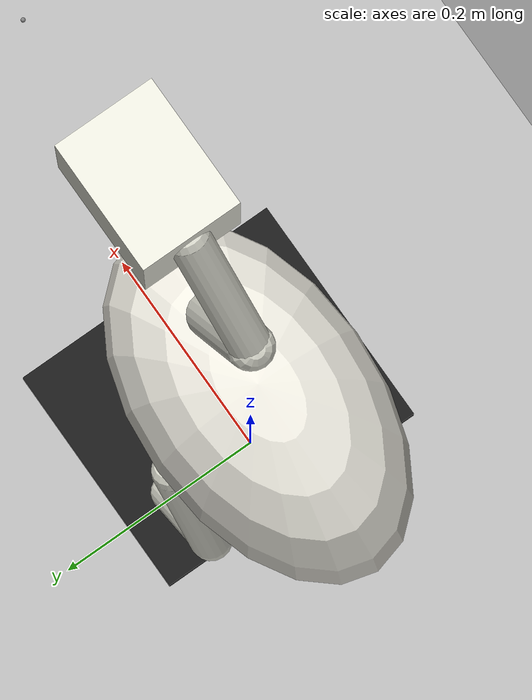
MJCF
<mujoco model="goose_r2_stance_trial">
  <compiler angle="radian" autolimits="true" />
  <option timestep=".001" gravity="0 0 -9.81" integrator="implicitfast" iterations="80" />
  <worldbody>
    <geom name="floor" type="plane" size="2 2 .1" friction=".8 .005 .0001" rgba=".7 .7 .7 1" />
    <body name="torso" pos="-0.01 0 0.35">
      <freejoint name="root" />
      <inertial pos="-0.000824350379 0.000392198411 -0.00290453638" mass="2.25346888" diaginertia="0.0213543553 0.0211706967 0.019496536" />
      <geom name="body_collision" type="ellipsoid" size="0.175 0.1025 0.115" mass="0" rgba=".91 .9 .86 1" />
      <body name="right_thigh" pos="0 -0.088 -0.064">
        <joint name="right_hip_yaw" axis="0 0 1" range="-0.7 0.7" damping=".03" armature=".00005" />
        <joint name="right_hip_roll" axis="1 0 0" range="-0.7 0.7" damping=".03" armature=".00005" />
        <joint name="right_hip_pitch" axis="0 1 0" range="-1.5 1.5" damping=".03" armature=".00005" />
        <inertial pos="-0.0449138206 1.90764775e-08 -0.0976001878" mass="0.158629984" diaginertia="0.000322669781 0.000384469484 0.000101589333" />
        <geom name="right_thigh_link" type="capsule" fromto="0 0 0 -0.055 0 -0.129" size=".019" mass="0" contype="0" conaffinity="0" rgba=".9 .9 .85 1" />
        <body name="right_shin" pos="-0.055 0 -0.129">
          <joint name="right_knee_pitch" axis="0 1 0" range="-1.8 1.8" damping=".03" armature=".00005" />
          <inertial pos="0.0479484101 2.03502183e-08 -0.0827541797" mass="0.146063427" diaginertia="0.000204359041 0.000298155733 0.000130382237" />
          <geom name="right_shin_link" type="capsule" fromto="0 0 0 0.065 0 -0.106" size=".017" mass="0" contype="0" conaffinity="0" rgba=".9 .9 .85 1" />
          <body name="right_foot" pos="0.065 0 -0.106">
            <joint name="right_ankle_pitch" axis="0 1 0" range="-1.5 1.5" damping=".03" armature=".00005" />
            <inertial pos="0.0506155638 -9.45755285e-09 -0.0312700247" mass="0.276019064" diaginertia="0.000205920356 0.00117219569 0.00129570192" />
            <geom name="right_sole_contact" type="box" size="0.1145 0.046 0.0065" pos="0.05 0 -0.044" mass="0" friction=".9 .005 .0001" rgba=".1 .1 .1 1" />
          </body>
        </body>
      </body>
      <body name="left_thigh" pos="0 0.088 -0.064">
        <joint name="left_hip_yaw" axis="0 0 1" range="-0.7 0.7" damping=".03" armature=".00005" />
        <joint name="left_hip_roll" axis="1 0 0" range="-0.7 0.7" damping=".03" armature=".00005" />
        <joint name="left_hip_pitch" axis="0 1 0" range="-1.5 1.5" damping=".03" armature=".00005" />
        <inertial pos="-0.0449138206 1.90764774e-08 -0.0976001878" mass="0.158629984" diaginertia="0.000322669781 0.000384469484 0.000101589333" />
        <geom name="left_thigh_link" type="capsule" fromto="0 0 0 -0.055 0 -0.129" size=".019" mass="0" contype="0" conaffinity="0" rgba=".9 .9 .85 1" />
        <body name="left_shin" pos="-0.055 0 -0.129">
          <joint name="left_knee_pitch" axis="0 1 0" range="-1.8 1.8" damping=".03" armature=".00005" />
          <inertial pos="0.0479484101 2.03502184e-08 -0.0827541797" mass="0.146063427" diaginertia="0.000204359041 0.000298155733 0.000130382237" />
          <geom name="left_shin_link" type="capsule" fromto="0 0 0 0.065 0 -0.106" size=".017" mass="0" contype="0" conaffinity="0" rgba=".9 .9 .85 1" />
          <body name="left_foot" pos="0.065 0 -0.106">
            <joint name="left_ankle_pitch" axis="0 1 0" range="-1.5 1.5" damping=".03" armature=".00005" />
            <inertial pos="0.0506155638 -9.01723298e-09 -0.0312700247" mass="0.276019064" diaginertia="0.000205920356 0.00117219569 0.00129570192" />
            <geom name="left_sole_contact" type="box" size="0.1145 0.046 0.0065" pos="0.05 0 -0.044" mass="0" friction=".9 .005 .0001" rgba=".1 .1 .1 1" />
          </body>
        </body>
      </body>
      <body name="neck_lower" pos="0.069 0 0.127">
        <joint name="neck_lower_pitch" axis="0 1 0" range="-0.8 1.5" damping=".03" armature=".00005" />
        <inertial pos="-0.0486403586 1.60030164e-08 0.129346859" mass="0.25439906" diaginertia="0.000522429143 0.000642779199 0.000195451347" />
        <geom type="capsule" fromto="0 0 0 -0.059 0 0.155" size=".02" mass="0" contype="0" conaffinity="0" rgba=".9 .9 .85 1" />
        <body name="neck_upper" pos="-0.059 0 0.155">
          <joint name="neck_upper_pitch" axis="0 1 0" range="-1.5 1.5" damping=".03" armature=".00005" />
          <inertial pos="0.0639480629 2.05961451e-08 0.0868241061" mass="0.156195402" diaginertia="0.000229958659 0.000376972259 0.000187660822" />
          <geom type="capsule" fromto="0 0 0 0.086 0 0.112" size=".018" mass="0" contype="0" conaffinity="0" rgba=".9 .9 .85 1" />
          <body name="head" pos="0.086 0 0.112">
            <joint name="head_pitch" axis="0 1 0" range="-2 2" damping=".03" armature=".00005" />
            <inertial pos="0.0987991149 -1.15453328e-07 -0.032508021" mass="0.254391144" diaginertia="0.000399783818 0.000999187205 0.000793716805" />
            <geom type="box" size="0.06 0.046 0.051" pos="0.054 0 -0.014" mass="0" contype="0" conaffinity="0" rgba=".9 .9 .85 1" />
            <site name="beak_tip_visual_datum" pos="0.229 0 -0.075" size=".002" />
          </body>
        </body>
      </body>
    </body>
  </worldbody>
  <actuator>
    <motor name="right_hip_yaw_motor" joint="right_hip_yaw" ctrllimited="true" ctrlrange="-0.82 0.82" />
    <motor name="right_hip_roll_motor" joint="right_hip_roll" ctrllimited="true" ctrlrange="-0.82 0.82" />
    <motor name="right_hip_pitch_motor" joint="right_hip_pitch" ctrllimited="true" ctrlrange="-0.82 0.82" />
    <motor name="right_knee_pitch_motor" joint="right_knee_pitch" ctrllimited="true" ctrlrange="-0.82 0.82" />
    <motor name="right_ankle_pitch_motor" joint="right_ankle_pitch" ctrllimited="true" ctrlrange="-0.82 0.82" />
    <motor name="left_hip_yaw_motor" joint="left_hip_yaw" ctrllimited="true" ctrlrange="-0.82 0.82" />
    <motor name="left_hip_roll_motor" joint="left_hip_roll" ctrllimited="true" ctrlrange="-0.82 0.82" />
    <motor name="left_hip_pitch_motor" joint="left_hip_pitch" ctrllimited="true" ctrlrange="-0.82 0.82" />
    <motor name="left_knee_pitch_motor" joint="left_knee_pitch" ctrllimited="true" ctrlrange="-0.82 0.82" />
    <motor name="left_ankle_pitch_motor" joint="left_ankle_pitch" ctrllimited="true" ctrlrange="-0.82 0.82" />
    <motor name="neck_lower_pitch_motor" joint="neck_lower_pitch" ctrllimited="true" ctrlrange="-2.12 2.12" />
    <motor name="neck_upper_pitch_motor" joint="neck_upper_pitch" ctrllimited="true" ctrlrange="-2.12 2.12" />
    <motor name="head_pitch_motor" joint="head_pitch" ctrllimited="true" ctrlrange="-0.82 0.82" />
  </actuator>
</mujoco>
